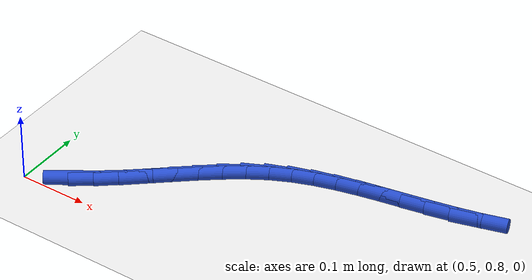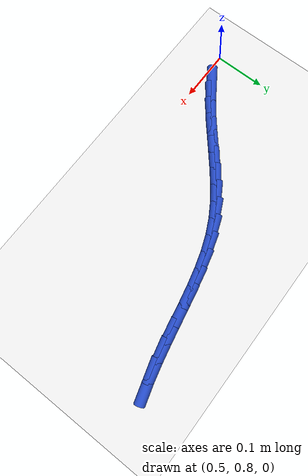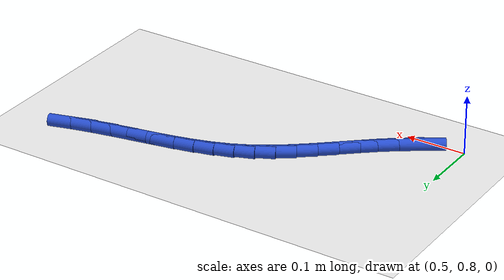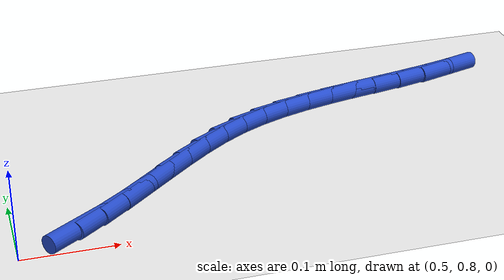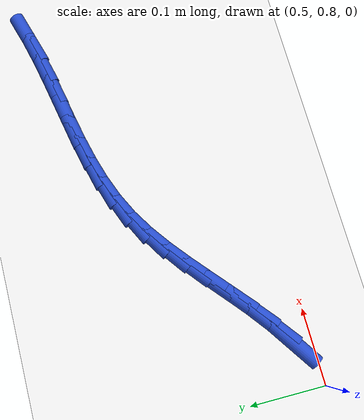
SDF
<sdf version="1.6">
 <world name="default">
  <model name="ground_plane">
   <static>1</static>
   <link name="link">
    <collision name="collision">
     <geometry><plane><normal>0 0 1</normal><size>100 100</size></plane></geometry>
     <surface><friction><ode><mu>100</mu><mu2>50</mu2></ode></friction></surface>
    </collision>
    <visual name="visual">
     <cast_shadows>0</cast_shadows>
     <geometry><plane><normal>0 0 1</normal><size>100 100</size></plane></geometry>
     <material>
      <script><uri>file://media/materials/scripts/gazebo.material</uri><name>Gazebo/WhiteGlow</name></script>
     </material>
    </visual>
   </link>
  </model>
  <model name="line">
   <link name="link_33">
    <pose>0.5634428321283611 0.8264915890766877 0.01 0 1.57 0.5981819581872617</pose>
    <collision name="collision">
     <geometry><cylinder><radius>0.01</radius><length>0.08</length></cylinder></geometry>
    </collision>
    <visual name="visual">
     <material>
      <script><name>Gazebo/Blue</name><uri>file://media/materials/scripts/gazebo.material</uri></script>
     </material>
     <geometry><cylinder><radius>0.01</radius><length>0.08</length></cylinder></geometry>
    </visual>
   </link>
   <link name="link_34">
    <pose>0.5911348107306366 0.8453628737755863 0.01 0 1.57 0.6601263199134412</pose>
    <collision name="collision">
     <geometry><cylinder><radius>0.01</radius><length>0.08</length></cylinder></geometry>
    </collision>
    <visual name="visual">
     <material>
      <script><name>Gazebo/Blue</name><uri>file://media/materials/scripts/gazebo.material</uri></script>
     </material>
     <geometry><cylinder><radius>0.01</radius><length>0.08</length></cylinder></geometry>
    </visual>
   </link>
   <link name="link_35">
    <pose>0.6177494187679955 0.8660239893460308 0.01 0 1.57 0.6992605258342632</pose>
    <collision name="collision">
     <geometry><cylinder><radius>0.01</radius><length>0.08</length></cylinder></geometry>
    </collision>
    <visual name="visual">
     <material>
      <script><name>Gazebo/Blue</name><uri>file://media/materials/scripts/gazebo.material</uri></script>
     </material>
     <geometry><cylinder><radius>0.01</radius><length>0.08</length></cylinder></geometry>
    </visual>
   </link>
   <link name="link_36">
    <pose>0.6436143684592758 0.8877770605529852 0.01 0 1.57 0.7162536560897144</pose>
    <collision name="collision">
     <geometry><cylinder><radius>0.01</radius><length>0.08</length></cylinder></geometry>
    </collision>
    <visual name="visual">
     <material>
      <script><name>Gazebo/Blue</name><uri>file://media/materials/scripts/gazebo.material</uri></script>
     </material>
     <geometry><cylinder><radius>0.01</radius><length>0.08</length></cylinder></geometry>
    </visual>
   </link>
   <link name="link_37">
    <pose>0.6690573720233162 0.9099242121614153 0.01 0 1.57 0.7112547116933056</pose>
    <collision name="collision">
     <geometry><cylinder><radius>0.01</radius><length>0.08</length></cylinder></geometry>
    </collision>
    <visual name="visual">
     <material>
      <script><name>Gazebo/Blue</name><uri>file://media/materials/scripts/gazebo.material</uri></script>
     </material>
     <geometry><cylinder><radius>0.01</radius><length>0.08</length></cylinder></geometry>
    </visual>
   </link>
   <link name="link_38">
    <pose>0.6944061416789544 0.9317675689362845 0.01 0 1.57 0.6836362943842442</pose>
    <collision name="collision">
     <geometry><cylinder><radius>0.01</radius><length>0.08</length></cylinder></geometry>
    </collision>
    <visual name="visual">
     <material>
      <script><name>Gazebo/Blue</name><uri>file://media/materials/scripts/gazebo.material</uri></script>
     </material>
     <geometry><cylinder><radius>0.01</radius><length>0.08</length></cylinder></geometry>
    </visual>
   </link>
   <link name="link_39">
    <pose>0.7199883896450288 0.9526092556425585 0.01 0 1.57 0.6320093441488053</pose>
    <collision name="collision">
     <geometry><cylinder><radius>0.01</radius><length>0.08</length></cylinder></geometry>
    </collision>
    <visual name="visual">
     <material>
      <script><name>Gazebo/Blue</name><uri>file://media/materials/scripts/gazebo.material</uri></script>
     </material>
     <geometry><cylinder><radius>0.01</radius><length>0.08</length></cylinder></geometry>
    </visual>
   </link>
   <link name="link_40">
    <pose>0.7461318281403775 0.9717513970452019 0.01 0 1.57 0.5545859695427342</pose>
    <collision name="collision">
     <geometry><cylinder><radius>0.01</radius><length>0.08</length></cylinder></geometry>
    </collision>
    <visual name="visual">
     <material>
      <script><name>Gazebo/Blue</name><uri>file://media/materials/scripts/gazebo.material</uri></script>
     </material>
     <geometry><cylinder><radius>0.01</radius><length>0.08</length></cylinder></geometry>
    </visual>
   </link>
   <link name="link_41">
    <pose>0.7731641693838388 0.9884961179091789 0.01 0 1.57 0.45607324200184807</pose>
    <collision name="collision">
     <geometry><cylinder><radius>0.01</radius><length>0.08</length></cylinder></geometry>
    </collision>
    <visual name="visual">
     <material>
      <script><name>Gazebo/Blue</name><uri>file://media/materials/scripts/gazebo.material</uri></script>
     </material>
     <geometry><cylinder><radius>0.01</radius><length>0.08</length></cylinder></geometry>
    </visual>
   </link>
   <link name="link_42">
    <pose>0.8013508053959618 1.0023235678150995 0.01 0 1.57 0.36544461639054204</pose>
    <collision name="collision">
     <geometry><cylinder><radius>0.01</radius><length>0.08</length></cylinder></geometry>
    </collision>
    <visual name="visual">
     <material>
      <script><name>Gazebo/Blue</name><uri>file://media/materials/scripts/gazebo.material</uri></script>
     </material>
     <geometry><cylinder><radius>0.01</radius><length>0.08</length></cylinder></geometry>
    </visual>
   </link>
   <link name="link_43">
    <pose>0.8306675582209306 1.0135410862928114 0.01 0 1.57 0.29307096880721095</pose>
    <collision name="collision">
     <geometry><cylinder><radius>0.01</radius><length>0.08</length></cylinder></geometry>
    </collision>
    <visual name="visual">
     <material>
      <script><name>Gazebo/Blue</name><uri>file://media/materials/scripts/gazebo.material</uri></script>
     </material>
     <geometry><cylinder><radius>0.01</radius><length>0.08</length></cylinder></geometry>
    </visual>
   </link>
   <link name="link_44">
    <pose>0.8610062085583516 1.022696086640947 0.01 0 1.57 0.23975715989009924</pose>
    <collision name="collision">
     <geometry><cylinder><radius>0.01</radius><length>0.08</length></cylinder></geometry>
    </collision>
    <visual name="visual">
     <material>
      <script><name>Gazebo/Blue</name><uri>file://media/materials/scripts/gazebo.material</uri></script>
     </material>
     <geometry><cylinder><radius>0.01</radius><length>0.08</length></cylinder></geometry>
    </visual>
   </link>
   <link name="link_45">
    <pose>0.8922585280978721 1.0303360078961303 0.01 0 1.57 0.20520348158251472</pose>
    <collision name="collision">
     <geometry><cylinder><radius>0.01</radius><length>0.08</length></cylinder></geometry>
    </collision>
    <visual name="visual">
     <material>
      <script><name>Gazebo/Blue</name><uri>file://media/materials/scripts/gazebo.material</uri></script>
     </material>
     <geometry><cylinder><radius>0.01</radius><length>0.08</length></cylinder></geometry>
    </visual>
   </link>
   <link name="link_46">
    <pose>0.9243162885291387 1.0370082890949839 0.01 0 1.57 0.18860557881183887</pose>
    <collision name="collision">
     <geometry><cylinder><radius>0.01</radius><length>0.08</length></cylinder></geometry>
    </collision>
    <visual name="visual">
     <material>
      <script><name>Gazebo/Blue</name><uri>file://media/materials/scripts/gazebo.material</uri></script>
     </material>
     <geometry><cylinder><radius>0.01</radius><length>0.08</length></cylinder></geometry>
    </visual>
   </link>
   <link name="link_47">
    <pose>0.9570712615417976 1.0432603692741305 0.01 0 1.57 0.18903426544923954</pose>
    <collision name="collision">
     <geometry><cylinder><radius>0.01</radius><length>0.08</length></cylinder></geometry>
    </collision>
    <visual name="visual">
     <material>
      <script><name>Gazebo/Blue</name><uri>file://media/materials/scripts/gazebo.material</uri></script>
     </material>
     <geometry><cylinder><radius>0.01</radius><length>0.08</length></cylinder></geometry>
    </visual>
   </link>
   <link name="link_48">
    <pose>0.9904152188254955 1.0496396874701928 0.01 0 1.57 0.20559882122137657</pose>
    <collision name="collision">
     <geometry><cylinder><radius>0.01</radius><length>0.08</length></cylinder></geometry>
    </collision>
    <visual name="visual">
     <material>
      <script><name>Gazebo/Blue</name><uri>file://media/materials/scripts/gazebo.material</uri></script>
     </material>
     <geometry><cylinder><radius>0.01</radius><length>0.08</length></cylinder></geometry>
    </visual>
   </link>
   <link name="link_49">
    <pose>1.0242399320698794 1.0566936827197941 0.01 0 1.57 0.23744566550088833</pose>
    <collision name="collision">
     <geometry><cylinder><radius>0.01</radius><length>0.08</length></cylinder></geometry>
    </collision>
    <visual name="visual">
     <material>
      <script><name>Gazebo/Blue</name><uri>file://media/materials/scripts/gazebo.material</uri></script>
     </material>
     <geometry><cylinder><radius>0.01</radius><length>0.08</length></cylinder></geometry>
    </visual>
   </link>
   <link name="link_50">
    <pose>1.0584371729645954 1.0649697940595573 0.01 0 1.57 0.2836416951871096</pose>
    <collision name="collision">
     <geometry><cylinder><radius>0.01</radius><length>0.08</length></cylinder></geometry>
    </collision>
    <visual name="visual">
     <material>
      <script><name>Gazebo/Blue</name><uri>file://media/materials/scripts/gazebo.material</uri></script>
     </material>
     <geometry><cylinder><radius>0.01</radius><length>0.08</length></cylinder></geometry>
    </visual>
   </link>
  </model>
 </world>
</sdf>
